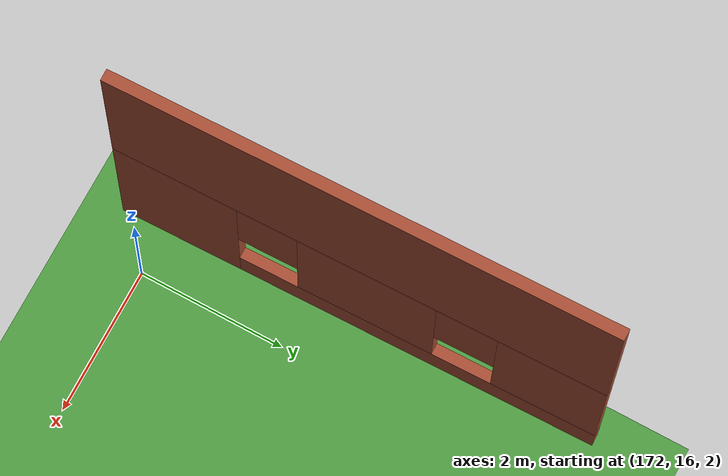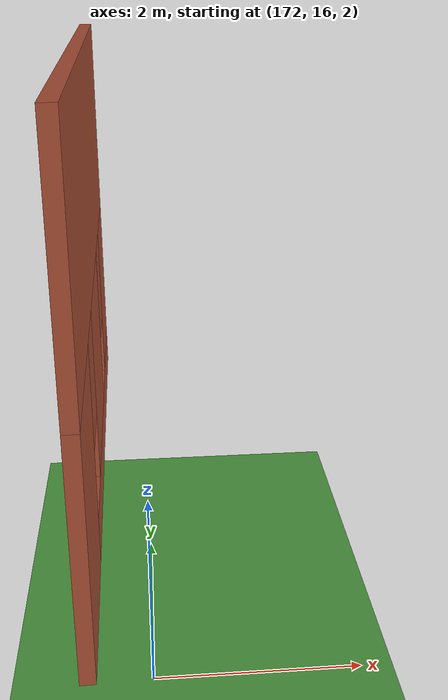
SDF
<sdf version="1.7">
 <world name="default">
  <model name="ground_plane">
   <static>1</static>
   <link name="link">
    <collision name="collision">
     <geometry><plane><normal>0 0 1</normal><size>100 100</size></plane></geometry>
     <surface>
      <contact><collide_bitmask>65535</collide_bitmask></contact>
      <friction><ode><mu>100</mu><mu2>50</mu2></ode></friction>
     </surface>
    </collision>
    <visual name="grass">
     <pose>0 0 -0.1 0 -0 0</pose>
     <cast_shadows>0</cast_shadows>
     <geometry><plane><normal>0 0 1</normal><size>1000 1000</size></plane></geometry>
     <material>
      <script><uri>file://media/materials/scripts/gazebo.material</uri><name>Gazebo/Grass</name></script>
     </material>
    </visual>
   </link>
  </model>
  <model name="asphalt_plane">
   <static>1</static>
   <link name="link">
    <collision name="collision"><geometry><box><size>20 20 0.1</size></box></geometry></collision>
    <visual name="visual">
     <cast_shadows>0</cast_shadows>
     <geometry><box><size>20 20 0.1</size></box></geometry>
     <material>
      <script>
       <uri>model://asphalt_plane/materials/scripts</uri>
       <uri>model://asphalt_plane/materials/textures</uri>
       <name>vrc/asphalt</name>
      </script>
     </material>
    </visual>
   </link>
   <pose>26.7323 45.4974 0 0 -0 0</pose>
  </model>
  <model name="my_building_1_clone">
   <link name="Wall_75">
    <pose>-4.12557 -6.05 2.5 0 -0 0</pose>
    <visual name="Wall_75_Visual_2">
     <pose>0.117505 0 1.5 0 -0 0</pose>
     <geometry><box><size>1.83342 0.15 2</size></box></geometry>
     <material>
      <script><uri>file://media/materials/scripts/gazebo.material</uri><name>Gazebo/Bricks</name></script>
      <ambient>1 1 1 1</ambient>
      <shader type="pixel"/>
     </material>
     <meta><layer>1</layer></meta>
    </visual>
    <visual name="Wall_75_Visual_5">
     <pose>1.43422 0 1.9 0 -0 0</pose>
     <geometry><box><size>0.8 0.15 1.2</size></box></geometry>
     <material>
      <script><uri>file://media/materials/scripts/gazebo.material</uri><name>Gazebo/Bricks</name></script>
      <ambient>1 1 1 1</ambient>
      <shader type="pixel"/>
     </material>
     <meta><layer>1</layer></meta>
    </visual>
    <visual name="Wall_75_Visual_0">
     <pose>-2.4246 0 1.25 0 -0 0</pose>
     <geometry><box><size>1.6508 0.15 2.5</size></box></geometry>
     <material>
      <script><uri>file://media/materials/scripts/gazebo.material</uri><name>Gazebo/Bricks</name></script>
      <ambient>1 1 1 1</ambient>
      <shader type="pixel"/>
     </material>
     <meta><layer>1</layer></meta>
    </visual>
    <visual name="Wall_75_Visual_4">
     <pose>-1.19921 0 1.9 0 -0 0</pose>
     <geometry><box><size>0.8 0.15 1.2</size></box></geometry>
     <material>
      <script><uri>file://media/materials/scripts/gazebo.material</uri><name>Gazebo/Bricks</name></script>
      <ambient>1 1 1 1</ambient>
      <shader type="pixel"/>
     </material>
     <meta><layer>1</layer></meta>
    </visual>
    <visual name="Wall_75_Visual_3">
     <pose>2.54211 0 1.5 0 -0 0</pose>
     <geometry><box><size>1.41579 0.15 2</size></box></geometry>
     <material>
      <script><uri>file://media/materials/scripts/gazebo.material</uri><name>Gazebo/Bricks</name></script>
      <ambient>1 1 1 1</ambient>
      <shader type="pixel"/>
     </material>
     <meta><layer>1</layer></meta>
    </visual>
    <visual name="Wall_75_Visual_1">
     <pose>0.825397 0 0.25 0 -0 0</pose>
     <geometry><box><size>4.84921 0.15 0.5</size></box></geometry>
     <material>
      <script><uri>file://media/materials/scripts/gazebo.material</uri><name>Gazebo/Bricks</name></script>
      <ambient>1 1 1 1</ambient>
      <shader type="pixel"/>
     </material>
     <meta><layer>1</layer></meta>
    </visual>
    <collision name="Wall_75_Collision_0">
     <pose>-2.4246 0 1.25 0 -0 0</pose>
     <geometry><box><size>1.6508 0.15 2.5</size></box></geometry>
     <surface>
      <friction>
       <ode><mu>1</mu><mu2>1</mu2><fdir1>0 0 0</fdir1><slip1>0</slip1><slip2>0</slip2></ode>
       <torsional>
        <coefficient>1</coefficient>
        <patch_radius>0</patch_radius>
        <surface_radius>0</surface_radius>
        <use_patch_radius>1</use_patch_radius>
        <ode><slip>0</slip></ode>
       </torsional>
      </friction>
      <bounce><restitution_coefficient>0</restitution_coefficient><threshold>1e+06</threshold></bounce>
      <contact>
       <collide_without_contact>0</collide_without_contact>
       <collide_without_contact_bitmask>1</collide_without_contact_bitmask>
       <collide_bitmask>1</collide_bitmask>
       <ode>
        <soft_cfm>0</soft_cfm>
        <soft_erp>0.2</soft_erp>
        <kp>1e+13</kp>
        <kd>1</kd>
        <max_vel>0.01</max_vel>
        <min_depth>0</min_depth>
       </ode>
       <bullet>
        <split_impulse>1</split_impulse>
        <split_impulse_penetration_threshold>-0.01</split_impulse_penetration_threshold>
        <soft_cfm>0</soft_cfm>
        <soft_erp>0.2</soft_erp>
        <kp>1e+13</kp>
        <kd>1</kd>
       </bullet>
      </contact>
     </surface>
    </collision>
    <collision name="Wall_75_Collision_3">
     <pose>2.54211 0 1.5 0 -0 0</pose>
     <geometry><box><size>1.41579 0.15 2</size></box></geometry>
     <surface>
      <friction>
       <ode><mu>1</mu><mu2>1</mu2><fdir1>0 0 0</fdir1><slip1>0</slip1><slip2>0</slip2></ode>
       <torsional>
        <coefficient>1</coefficient>
        <patch_radius>0</patch_radius>
        <surface_radius>0</surface_radius>
        <use_patch_radius>1</use_patch_radius>
        <ode><slip>0</slip></ode>
       </torsional>
      </friction>
      <bounce><restitution_coefficient>0</restitution_coefficient><threshold>1e+06</threshold></bounce>
      <contact>
       <collide_without_contact>0</collide_without_contact>
       <collide_without_contact_bitmask>1</collide_without_contact_bitmask>
       <collide_bitmask>1</collide_bitmask>
       <ode>
        <soft_cfm>0</soft_cfm>
        <soft_erp>0.2</soft_erp>
        <kp>1e+13</kp>
        <kd>1</kd>
        <max_vel>0.01</max_vel>
        <min_depth>0</min_depth>
       </ode>
       <bullet>
        <split_impulse>1</split_impulse>
        <split_impulse_penetration_threshold>-0.01</split_impulse_penetration_threshold>
        <soft_cfm>0</soft_cfm>
        <soft_erp>0.2</soft_erp>
        <kp>1e+13</kp>
        <kd>1</kd>
       </bullet>
      </contact>
     </surface>
    </collision>
    <collision name="Wall_75_Collision_1">
     <pose>0.825397 0 0.25 0 -0 0</pose>
     <geometry><box><size>4.84921 0.15 0.5</size></box></geometry>
     <surface>
      <friction>
       <ode><mu>1</mu><mu2>1</mu2><fdir1>0 0 0</fdir1><slip1>0</slip1><slip2>0</slip2></ode>
       <torsional>
        <coefficient>1</coefficient>
        <patch_radius>0</patch_radius>
        <surface_radius>0</surface_radius>
        <use_patch_radius>1</use_patch_radius>
        <ode><slip>0</slip></ode>
       </torsional>
      </friction>
      <bounce><restitution_coefficient>0</restitution_coefficient><threshold>1e+06</threshold></bounce>
      <contact>
       <collide_without_contact>0</collide_without_contact>
       <collide_without_contact_bitmask>1</collide_without_contact_bitmask>
       <collide_bitmask>1</collide_bitmask>
       <ode>
        <soft_cfm>0</soft_cfm>
        <soft_erp>0.2</soft_erp>
        <kp>1e+13</kp>
        <kd>1</kd>
        <max_vel>0.01</max_vel>
        <min_depth>0</min_depth>
       </ode>
       <bullet>
        <split_impulse>1</split_impulse>
        <split_impulse_penetration_threshold>-0.01</split_impulse_penetration_threshold>
        <soft_cfm>0</soft_cfm>
        <soft_erp>0.2</soft_erp>
        <kp>1e+13</kp>
        <kd>1</kd>
       </bullet>
      </contact>
     </surface>
    </collision>
    <collision name="Wall_75_Collision_5">
     <pose>1.43422 0 1.9 0 -0 0</pose>
     <geometry><box><size>0.8 0.15 1.2</size></box></geometry>
     <surface>
      <friction>
       <ode><mu>1</mu><mu2>1</mu2><fdir1>0 0 0</fdir1><slip1>0</slip1><slip2>0</slip2></ode>
       <torsional>
        <coefficient>1</coefficient>
        <patch_radius>0</patch_radius>
        <surface_radius>0</surface_radius>
        <use_patch_radius>1</use_patch_radius>
        <ode><slip>0</slip></ode>
       </torsional>
      </friction>
      <bounce><restitution_coefficient>0</restitution_coefficient><threshold>1e+06</threshold></bounce>
      <contact>
       <collide_without_contact>0</collide_without_contact>
       <collide_without_contact_bitmask>1</collide_without_contact_bitmask>
       <collide_bitmask>1</collide_bitmask>
       <ode>
        <soft_cfm>0</soft_cfm>
        <soft_erp>0.2</soft_erp>
        <kp>1e+13</kp>
        <kd>1</kd>
        <max_vel>0.01</max_vel>
        <min_depth>0</min_depth>
       </ode>
       <bullet>
        <split_impulse>1</split_impulse>
        <split_impulse_penetration_threshold>-0.01</split_impulse_penetration_threshold>
        <soft_cfm>0</soft_cfm>
        <soft_erp>0.2</soft_erp>
        <kp>1e+13</kp>
        <kd>1</kd>
       </bullet>
      </contact>
     </surface>
    </collision>
    <collision name="Wall_75_Collision_2">
     <pose>0.117505 0 1.5 0 -0 0</pose>
     <geometry><box><size>1.83342 0.15 2</size></box></geometry>
     <surface>
      <friction>
       <ode><mu>1</mu><mu2>1</mu2><fdir1>0 0 0</fdir1><slip1>0</slip1><slip2>0</slip2></ode>
       <torsional>
        <coefficient>1</coefficient>
        <patch_radius>0</patch_radius>
        <surface_radius>0</surface_radius>
        <use_patch_radius>1</use_patch_radius>
        <ode><slip>0</slip></ode>
       </torsional>
      </friction>
      <bounce><restitution_coefficient>0</restitution_coefficient><threshold>1e+06</threshold></bounce>
      <contact>
       <collide_without_contact>0</collide_without_contact>
       <collide_without_contact_bitmask>1</collide_without_contact_bitmask>
       <collide_bitmask>1</collide_bitmask>
       <ode>
        <soft_cfm>0</soft_cfm>
        <soft_erp>0.2</soft_erp>
        <kp>1e+13</kp>
        <kd>1</kd>
        <max_vel>0.01</max_vel>
        <min_depth>0</min_depth>
       </ode>
       <bullet>
        <split_impulse>1</split_impulse>
        <split_impulse_penetration_threshold>-0.01</split_impulse_penetration_threshold>
        <soft_cfm>0</soft_cfm>
        <soft_erp>0.2</soft_erp>
        <kp>1e+13</kp>
        <kd>1</kd>
       </bullet>
      </contact>
     </surface>
    </collision>
    <collision name="Wall_75_Collision_4">
     <pose>-1.19921 0 1.9 0 -0 0</pose>
     <geometry><box><size>0.8 0.15 1.2</size></box></geometry>
     <surface>
      <friction>
       <ode><mu>1</mu><mu2>1</mu2><fdir1>0 0 0</fdir1><slip1>0</slip1><slip2>0</slip2></ode>
       <torsional>
        <coefficient>1</coefficient>
        <patch_radius>0</patch_radius>
        <surface_radius>0</surface_radius>
        <use_patch_radius>1</use_patch_radius>
        <ode><slip>0</slip></ode>
       </torsional>
      </friction>
      <bounce><restitution_coefficient>0</restitution_coefficient><threshold>1e+06</threshold></bounce>
      <contact>
       <collide_without_contact>0</collide_without_contact>
       <collide_without_contact_bitmask>1</collide_without_contact_bitmask>
       <collide_bitmask>1</collide_bitmask>
       <ode>
        <soft_cfm>0</soft_cfm>
        <soft_erp>0.2</soft_erp>
        <kp>1e+13</kp>
        <kd>1</kd>
        <max_vel>0.01</max_vel>
        <min_depth>0</min_depth>
       </ode>
       <bullet>
        <split_impulse>1</split_impulse>
        <split_impulse_penetration_threshold>-0.01</split_impulse_penetration_threshold>
        <soft_cfm>0</soft_cfm>
        <soft_erp>0.2</soft_erp>
        <kp>1e+13</kp>
        <kd>1</kd>
       </bullet>
      </contact>
     </surface>
    </collision>
   </link>
   <link name="Wall_79">
    <pose>-4.12557 -6.05 5 0 -0 0</pose>
    <visual name="Wall_79_Visual">
     <pose>0 0 1.25 0 -0 0</pose>
     <geometry><box><size>6.5 0.15 2.5</size></box></geometry>
     <material>
      <script><uri>file://media/materials/scripts/gazebo.material</uri><name>Gazebo/Bricks</name></script>
      <ambient>1 1 1 1</ambient>
      <shader type="pixel"/>
     </material>
     <meta><layer>2</layer></meta>
    </visual>
    <collision name="Wall_79_Collision">
     <pose>0 0 1.25 0 -0 0</pose>
     <geometry><box><size>6.5 0.15 2.5</size></box></geometry>
     <surface>
      <friction>
       <ode><mu>1</mu><mu2>1</mu2><fdir1>0 0 0</fdir1><slip1>0</slip1><slip2>0</slip2></ode>
       <torsional>
        <coefficient>1</coefficient>
        <patch_radius>0</patch_radius>
        <surface_radius>0</surface_radius>
        <use_patch_radius>1</use_patch_radius>
        <ode><slip>0</slip></ode>
       </torsional>
      </friction>
      <bounce><restitution_coefficient>0</restitution_coefficient><threshold>1e+06</threshold></bounce>
      <contact>
       <collide_without_contact>0</collide_without_contact>
       <collide_without_contact_bitmask>1</collide_without_contact_bitmask>
       <collide_bitmask>1</collide_bitmask>
       <ode>
        <soft_cfm>0</soft_cfm>
        <soft_erp>0.2</soft_erp>
        <kp>1e+13</kp>
        <kd>1</kd>
        <max_vel>0.01</max_vel>
        <min_depth>0</min_depth>
       </ode>
       <bullet>
        <split_impulse>1</split_impulse>
        <split_impulse_penetration_threshold>-0.01</split_impulse_penetration_threshold>
        <soft_cfm>0</soft_cfm>
        <soft_erp>0.2</soft_erp>
        <kp>1e+13</kp>
        <kd>1</kd>
       </bullet>
      </contact>
     </surface>
    </collision>
   </link>
   <static>1</static>
   <pose>165.249 22.7467 0 0 -0 1.58902</pose>
  </model>
 </world>
</sdf>
